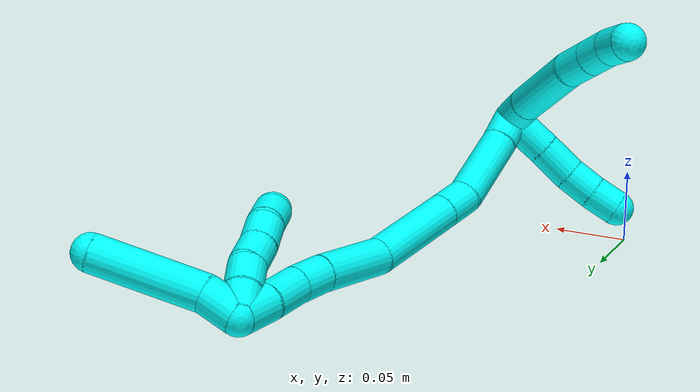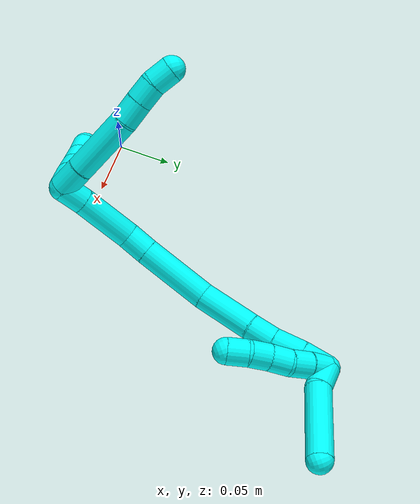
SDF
<sdf version="1.7">
 <world name="default">
  <model name="3">
   <static>0</static>
   <link name="3">
    <collision name="collision-cylinder-e_1_2_8">
     <pose>0.00566 -0.005322 0.010529 0.467992 0.447331 0.108335</pose>
     <geometry><cylinder><radius>0.0125</radius><length>0.02617</length></cylinder></geometry>
     <surface>
      <friction><ode><mu>1.16</mu><mu2>1.16</mu2><slip1>0</slip1><slip2>0</slip2></ode></friction>
      <contact><ode><kp>1e+06</kp><kd>1</kd><max_vel>0</max_vel><min_depth>0.001</min_depth></ode></contact>
     </surface>
    </collision>
    <visual name="visual-cylinder-e_1_2_8">
     <pose>0.00566 -0.005322 0.010529 0.467992 0.447331 0.108335</pose>
     <geometry><cylinder><radius>0.0125</radius><length>0.02617</length></cylinder></geometry>
     <material><ambient>0.003922 1 0.996078 1</ambient></material>
    </visual>
    <collision name="collision-cylinder-e_2_8_9">
     <pose>0.022712 -0.02375 0.046172 0.481006 0.382341 0.094857</pose>
     <geometry><cylinder><radius>0.0125</radius><length>0.061065</length></cylinder></geometry>
     <surface>
      <friction><ode><mu>1.16</mu><mu2>1.16</mu2><slip1>0</slip1><slip2>0</slip2></ode></friction>
      <contact><ode><kp>1e+06</kp><kd>1</kd><max_vel>0</max_vel><min_depth>0.001</min_depth></ode></contact>
     </surface>
    </collision>
    <visual name="visual-cylinder-e_2_8_9">
     <pose>0.022712 -0.02375 0.046172 0.481006 0.382341 0.094857</pose>
     <geometry><cylinder><radius>0.0125</radius><length>0.061065</length></cylinder></geometry>
     <material><ambient>0.003922 1 0.996078 1</ambient></material>
    </visual>
    <collision name="collision-cylinder-e_3_9_10">
     <pose>0.036901 -0.042846 0.080336 0.584625 0.252321 0.0763</pose>
     <geometry><cylinder><radius>0.0125</radius><length>0.022416</length></cylinder></geometry>
     <surface>
      <friction><ode><mu>1.16</mu><mu2>1.16</mu2><slip1>0</slip1><slip2>0</slip2></ode></friction>
      <contact><ode><kp>1e+06</kp><kd>1</kd><max_vel>0</max_vel><min_depth>0.001</min_depth></ode></contact>
     </surface>
    </collision>
    <visual name="visual-cylinder-e_3_9_10">
     <pose>0.036901 -0.042846 0.080336 0.584625 0.252321 0.0763</pose>
     <geometry><cylinder><radius>0.0125</radius><length>0.022416</length></cylinder></geometry>
     <material><ambient>0.003922 1 0.996078 1</ambient></material>
    </visual>
    <collision name="collision-cylinder-e_4_10_11">
     <pose>0.042244 -0.05395 0.097603 0.556746 0.257092 0.073849</pose>
     <geometry><cylinder><radius>0.0125</radius><length>0.020013</length></cylinder></geometry>
     <surface>
      <friction><ode><mu>1.16</mu><mu2>1.16</mu2><slip1>0</slip1><slip2>0</slip2></ode></friction>
      <contact><ode><kp>1e+06</kp><kd>1</kd><max_vel>0</max_vel><min_depth>0.001</min_depth></ode></contact>
     </surface>
    </collision>
    <visual name="visual-cylinder-e_4_10_11">
     <pose>0.042244 -0.05395 0.097603 0.556746 0.257092 0.073849</pose>
     <geometry><cylinder><radius>0.0125</radius><length>0.020013</length></cylinder></geometry>
     <material><ambient>0.003922 1 0.996078 1</ambient></material>
    </visual>
    <collision name="collision-cylinder-e_5_11_6">
     <pose>0.046546 -0.062257 0.115311 0.324511 0.173711 0.028505</pose>
     <geometry><cylinder><radius>0.0125</radius><length>0.020336</length></cylinder></geometry>
     <surface>
      <friction><ode><mu>1.16</mu><mu2>1.16</mu2><slip1>0</slip1><slip2>0</slip2></ode></friction>
      <contact><ode><kp>1e+06</kp><kd>1</kd><max_vel>0</max_vel><min_depth>0.001</min_depth></ode></contact>
     </surface>
    </collision>
    <visual name="visual-cylinder-e_5_11_6">
     <pose>0.046546 -0.062257 0.115311 0.324511 0.173711 0.028505</pose>
     <geometry><cylinder><radius>0.0125</radius><length>0.020336</length></cylinder></geometry>
     <material><ambient>0.003922 1 0.996078 1</ambient></material>
    </visual>
    <collision name="collision-cylinder-e_1_2_12">
     <pose>-0.014488 -0.004875 0.004607 0.813653 -1.13723 -0.537345</pose>
     <geometry><cylinder><radius>0.0125</radius><length>0.031929</length></cylinder></geometry>
     <surface>
      <friction><ode><mu>1.16</mu><mu2>1.16</mu2><slip1>0</slip1><slip2>0</slip2></ode></friction>
      <contact><ode><kp>1e+06</kp><kd>1</kd><max_vel>0</max_vel><min_depth>0.001</min_depth></ode></contact>
     </surface>
    </collision>
    <visual name="visual-cylinder-e_1_2_12">
     <pose>-0.014488 -0.004875 0.004607 0.813653 -1.13723 -0.537345</pose>
     <geometry><cylinder><radius>0.0125</radius><length>0.031929</length></cylinder></geometry>
     <material><ambient>0.003922 1 0.996078 1</ambient></material>
    </visual>
    <collision name="collision-cylinder-e_2_12_13">
     <pose>-0.040901 -0.013251 0.013006 0.745483 -1.16231 -0.502793</pose>
     <geometry><cylinder><radius>0.0125</radius><length>0.02599</length></cylinder></geometry>
     <surface>
      <friction><ode><mu>1.16</mu><mu2>1.16</mu2><slip1>0</slip1><slip2>0</slip2></ode></friction>
      <contact><ode><kp>1e+06</kp><kd>1</kd><max_vel>0</max_vel><min_depth>0.001</min_depth></ode></contact>
     </surface>
    </collision>
    <visual name="visual-cylinder-e_2_12_13">
     <pose>-0.040901 -0.013251 0.013006 0.745483 -1.16231 -0.502793</pose>
     <geometry><cylinder><radius>0.0125</radius><length>0.02599</length></cylinder></geometry>
     <material><ambient>0.003922 1 0.996078 1</ambient></material>
    </visual>
    <collision name="collision-cylinder-e_3_13_14">
     <pose>-0.061956 -0.020616 0.020961 0.748172 -1.01429 -0.429511</pose>
     <geometry><cylinder><radius>0.0125</radius><length>0.021503</length></cylinder></geometry>
     <surface>
      <friction><ode><mu>1.16</mu><mu2>1.16</mu2><slip1>0</slip1><slip2>0</slip2></ode></friction>
      <contact><ode><kp>1e+06</kp><kd>1</kd><max_vel>0</max_vel><min_depth>0.001</min_depth></ode></contact>
     </surface>
    </collision>
    <visual name="visual-cylinder-e_3_13_14">
     <pose>-0.061956 -0.020616 0.020961 0.748172 -1.01429 -0.429511</pose>
     <geometry><cylinder><radius>0.0125</radius><length>0.021503</length></cylinder></geometry>
     <material><ambient>0.003922 1 0.996078 1</ambient></material>
    </visual>
    <collision name="collision-cylinder-e_4_14_5">
     <pose>-0.079385 -0.028887 0.029311 0.811045 -0.938564 -0.428695</pose>
     <geometry><cylinder><radius>0.0125</radius><length>0.020578</length></cylinder></geometry>
     <surface>
      <friction><ode><mu>1.16</mu><mu2>1.16</mu2><slip1>0</slip1><slip2>0</slip2></ode></friction>
      <contact><ode><kp>1e+06</kp><kd>1</kd><max_vel>0</max_vel><min_depth>0.001</min_depth></ode></contact>
     </surface>
    </collision>
    <visual name="visual-cylinder-e_4_14_5">
     <pose>-0.079385 -0.028887 0.029311 0.811045 -0.938564 -0.428695</pose>
     <geometry><cylinder><radius>0.0125</radius><length>0.020578</length></cylinder></geometry>
     <material><ambient>0.003922 1 0.996078 1</ambient></material>
    </visual>
    <collision name="collision-cylinder-e_1_2_15">
     <pose>-0.003007 0.008986 0.00677 -0.925138 -0.261171 0.130792</pose>
     <geometry><cylinder><radius>0.0125</radius><length>0.023292</length></cylinder></geometry>
     <surface>
      <friction><ode><mu>1.16</mu><mu2>1.16</mu2><slip1>0</slip1><slip2>0</slip2></ode></friction>
      <contact><ode><kp>1e+06</kp><kd>1</kd><max_vel>0</max_vel><min_depth>0.001</min_depth></ode></contact>
     </surface>
    </collision>
    <visual name="visual-cylinder-e_1_2_15">
     <pose>-0.003007 0.008986 0.00677 -0.925138 -0.261171 0.130792</pose>
     <geometry><cylinder><radius>0.0125</radius><length>0.023292</length></cylinder></geometry>
     <material><ambient>0.003922 1 0.996078 1</ambient></material>
    </visual>
    <collision name="collision-cylinder-e_2_15_16">
     <pose>-0.011923 0.039791 0.027852 -0.990257 -0.222683 0.120601</pose>
     <geometry><cylinder><radius>0.0125</radius><length>0.053509</length></cylinder></geometry>
     <surface>
      <friction><ode><mu>1.16</mu><mu2>1.16</mu2><slip1>0</slip1><slip2>0</slip2></ode></friction>
      <contact><ode><kp>1e+06</kp><kd>1</kd><max_vel>0</max_vel><min_depth>0.001</min_depth></ode></contact>
     </surface>
    </collision>
    <visual name="visual-cylinder-e_2_15_16">
     <pose>-0.011923 0.039791 0.027852 -0.990257 -0.222683 0.120601</pose>
     <geometry><cylinder><radius>0.0125</radius><length>0.053509</length></cylinder></geometry>
     <material><ambient>0.003922 1 0.996078 1</ambient></material>
    </visual>
    <collision name="collision-cylinder-e_3_16_17">
     <pose>-0.016524 0.071673 0.048083 -1.0391 0.111563 -0.063854</pose>
     <geometry><cylinder><radius>0.0125</radius><length>0.023496</length></cylinder></geometry>
     <surface>
      <friction><ode><mu>1.16</mu><mu2>1.16</mu2><slip1>0</slip1><slip2>0</slip2></ode></friction>
      <contact><ode><kp>1e+06</kp><kd>1</kd><max_vel>0</max_vel><min_depth>0.001</min_depth></ode></contact>
     </surface>
    </collision>
    <visual name="visual-cylinder-e_3_16_17">
     <pose>-0.016524 0.071673 0.048083 -1.0391 0.111563 -0.063854</pose>
     <geometry><cylinder><radius>0.0125</radius><length>0.023496</length></cylinder></geometry>
     <material><ambient>0.003922 1 0.996078 1</ambient></material>
    </visual>
    <collision name="collision-cylinder-e_4_17_18">
     <pose>-0.010861 0.109782 0.071883 -1.00322 0.130186 -0.071464</pose>
     <geometry><cylinder><radius>0.0125</radius><length>0.06709</length></cylinder></geometry>
     <surface>
      <friction><ode><mu>1.16</mu><mu2>1.16</mu2><slip1>0</slip1><slip2>0</slip2></ode></friction>
      <contact><ode><kp>1e+06</kp><kd>1</kd><max_vel>0</max_vel><min_depth>0.001</min_depth></ode></contact>
     </surface>
    </collision>
    <visual name="visual-cylinder-e_4_17_18">
     <pose>-0.010861 0.109782 0.071883 -1.00322 0.130186 -0.071464</pose>
     <geometry><cylinder><radius>0.0125</radius><length>0.06709</length></cylinder></geometry>
     <material><ambient>0.003922 1 0.996078 1</ambient></material>
    </visual>
    <collision name="collision-cylinder-e_5_18_19">
     <pose>0.003789 0.157379 0.104872 -0.912893 0.39479 -0.195784</pose>
     <geometry><cylinder><radius>0.0125</radius><length>0.053535</length></cylinder></geometry>
     <surface>
      <friction><ode><mu>1.16</mu><mu2>1.16</mu2><slip1>0</slip1><slip2>0</slip2></ode></friction>
      <contact><ode><kp>1e+06</kp><kd>1</kd><max_vel>0</max_vel><min_depth>0.001</min_depth></ode></contact>
     </surface>
    </collision>
    <visual name="visual-cylinder-e_5_18_19">
     <pose>0.003789 0.157379 0.104872 -0.912893 0.39479 -0.195784</pose>
     <geometry><cylinder><radius>0.0125</radius><length>0.053535</length></cylinder></geometry>
     <material><ambient>0.003922 1 0.996078 1</ambient></material>
    </visual>
    <collision name="collision-cylinder-e_6_19_20">
     <pose>0.017704 0.185907 0.127266 -0.888965 0.303402 -0.145363</pose>
     <geometry><cylinder><radius>0.0125</radius><length>0.02423</length></cylinder></geometry>
     <surface>
      <friction><ode><mu>1.16</mu><mu2>1.16</mu2><slip1>0</slip1><slip2>0</slip2></ode></friction>
      <contact><ode><kp>1e+06</kp><kd>1</kd><max_vel>0</max_vel><min_depth>0.001</min_depth></ode></contact>
     </surface>
    </collision>
    <visual name="visual-cylinder-e_6_19_20">
     <pose>0.017704 0.185907 0.127266 -0.888965 0.303402 -0.145363</pose>
     <geometry><cylinder><radius>0.0125</radius><length>0.02423</length></cylinder></geometry>
     <material><ambient>0.003922 1 0.996078 1</ambient></material>
    </visual>
    <collision name="collision-cylinder-e_7_20_21">
     <pose>0.024828 0.204609 0.144722 -0.763083 0.244126 -0.098354</pose>
     <geometry><cylinder><radius>0.0125</radius><length>0.029003</length></cylinder></geometry>
     <surface>
      <friction><ode><mu>1.16</mu><mu2>1.16</mu2><slip1>0</slip1><slip2>0</slip2></ode></friction>
      <contact><ode><kp>1e+06</kp><kd>1</kd><max_vel>0</max_vel><min_depth>0.001</min_depth></ode></contact>
     </surface>
    </collision>
    <visual name="visual-cylinder-e_7_20_21">
     <pose>0.024828 0.204609 0.144722 -0.763083 0.244126 -0.098354</pose>
     <geometry><cylinder><radius>0.0125</radius><length>0.029003</length></cylinder></geometry>
     <material><ambient>0.003922 1 0.996078 1</ambient></material>
    </visual>
    <collision name="collision-cylinder-e_8_21_1">
     <pose>0.032011 0.223698 0.163004 -0.856891 0.288539 -0.132515</pose>
     <geometry><cylinder><radius>0.0125</radius><length>0.025846</length></cylinder></geometry>
     <surface>
      <friction><ode><mu>1.16</mu><mu2>1.16</mu2><slip1>0</slip1><slip2>0</slip2></ode></friction>
      <contact><ode><kp>1e+06</kp><kd>1</kd><max_vel>0</max_vel><min_depth>0.001</min_depth></ode></contact>
     </surface>
    </collision>
    <visual name="visual-cylinder-e_8_21_1">
     <pose>0.032011 0.223698 0.163004 -0.856891 0.288539 -0.132515</pose>
     <geometry><cylinder><radius>0.0125</radius><length>0.025846</length></cylinder></geometry>
     <material><ambient>0.003922 1 0.996078 1</ambient></material>
    </visual>
    <collision name="collision-cylinder-e_1_1_22">
     <pose>0.044359 0.238412 0.163421 -2.53404 0.746591 -1.79164</pose>
     <geometry><cylinder><radius>0.0125</radius><length>0.025536</length></cylinder></geometry>
     <surface>
      <friction><ode><mu>1.16</mu><mu2>1.16</mu2><slip1>0</slip1><slip2>0</slip2></ode></friction>
      <contact><ode><kp>1e+06</kp><kd>1</kd><max_vel>0</max_vel><min_depth>0.001</min_depth></ode></contact>
     </surface>
    </collision>
    <visual name="visual-cylinder-e_1_1_22">
     <pose>0.044359 0.238412 0.163421 -2.53404 0.746591 -1.79164</pose>
     <geometry><cylinder><radius>0.0125</radius><length>0.025536</length></cylinder></geometry>
     <material><ambient>0.003922 1 0.996078 1</ambient></material>
    </visual>
    <collision name="collision-cylinder-e_2_22_4">
     <pose>0.078414 0.267849 0.143012 -2.05649 0.750189 -1.15705</pose>
     <geometry><cylinder><radius>0.0125</radius><length>0.074464</length></cylinder></geometry>
     <surface>
      <friction><ode><mu>1.16</mu><mu2>1.16</mu2><slip1>0</slip1><slip2>0</slip2></ode></friction>
      <contact><ode><kp>1e+06</kp><kd>1</kd><max_vel>0</max_vel><min_depth>0.001</min_depth></ode></contact>
     </surface>
    </collision>
    <visual name="visual-cylinder-e_2_22_4">
     <pose>0.078414 0.267849 0.143012 -2.05649 0.750189 -1.15705</pose>
     <geometry><cylinder><radius>0.0125</radius><length>0.074464</length></cylinder></geometry>
     <material><ambient>0.003922 1 0.996078 1</ambient></material>
    </visual>
    <collision name="collision-cylinder-e_1_1_23">
     <pose>0.039586 0.228125 0.163342 2.57584 0.400377 1.21885</pose>
     <geometry><cylinder><radius>0.0125</radius><length>0.02</length></cylinder></geometry>
     <surface>
      <friction><ode><mu>1.16</mu><mu2>1.16</mu2><slip1>0</slip1><slip2>0</slip2></ode></friction>
      <contact><ode><kp>1e+06</kp><kd>1</kd><max_vel>0</max_vel><min_depth>0.001</min_depth></ode></contact>
     </surface>
    </collision>
    <visual name="visual-cylinder-e_1_1_23">
     <pose>0.039586 0.228125 0.163342 2.57584 0.400377 1.21885</pose>
     <geometry><cylinder><radius>0.0125</radius><length>0.02</length></cylinder></geometry>
     <material><ambient>0.003922 1 0.996078 1</ambient></material>
    </visual>
    <collision name="collision-cylinder-e_2_23_24">
     <pose>0.046786 0.21861 0.147314 2.63511 0.336577 1.16183</pose>
     <geometry><cylinder><radius>0.0125</radius><length>0.02</length></cylinder></geometry>
     <surface>
      <friction><ode><mu>1.16</mu><mu2>1.16</mu2><slip1>0</slip1><slip2>0</slip2></ode></friction>
      <contact><ode><kp>1e+06</kp><kd>1</kd><max_vel>0</max_vel><min_depth>0.001</min_depth></ode></contact>
     </surface>
    </collision>
    <visual name="visual-cylinder-e_2_23_24">
     <pose>0.046786 0.21861 0.147314 2.63511 0.336577 1.16183</pose>
     <geometry><cylinder><radius>0.0125</radius><length>0.02</length></cylinder></geometry>
     <material><ambient>0.003922 1 0.996078 1</ambient></material>
    </visual>
    <collision name="collision-cylinder-e_3_24_25">
     <pose>0.051177 0.208271 0.130958 2.52352 0.1091 0.338786</pose>
     <geometry><cylinder><radius>0.0125</radius><length>0.02</length></cylinder></geometry>
     <surface>
      <friction><ode><mu>1.16</mu><mu2>1.16</mu2><slip1>0</slip1><slip2>0</slip2></ode></friction>
      <contact><ode><kp>1e+06</kp><kd>1</kd><max_vel>0</max_vel><min_depth>0.001</min_depth></ode></contact>
     </surface>
    </collision>
    <visual name="visual-cylinder-e_3_24_25">
     <pose>0.051177 0.208271 0.130958 2.52352 0.1091 0.338786</pose>
     <geometry><cylinder><radius>0.0125</radius><length>0.02</length></cylinder></geometry>
     <material><ambient>0.003922 1 0.996078 1</ambient></material>
    </visual>
    <collision name="collision-cylinder-e_4_25_26">
     <pose>0.054537 0.197314 0.11462 2.57869 0.22904 0.757266</pose>
     <geometry><cylinder><radius>0.0125</radius><length>0.02</length></cylinder></geometry>
     <surface>
      <friction><ode><mu>1.16</mu><mu2>1.16</mu2><slip1>0</slip1><slip2>0</slip2></ode></friction>
      <contact><ode><kp>1e+06</kp><kd>1</kd><max_vel>0</max_vel><min_depth>0.001</min_depth></ode></contact>
     </surface>
    </collision>
    <visual name="visual-cylinder-e_4_25_26">
     <pose>0.054537 0.197314 0.11462 2.57869 0.22904 0.757266</pose>
     <geometry><cylinder><radius>0.0125</radius><length>0.02</length></cylinder></geometry>
     <material><ambient>0.003922 1 0.996078 1</ambient></material>
    </visual>
    <collision name="collision-cylinder-e_5_26_3">
     <pose>0.056648 0.187842 0.097345 2.69986 -0.015865 -0.07063</pose>
     <geometry><cylinder><radius>0.0125</radius><length>0.02</length></cylinder></geometry>
     <surface>
      <friction><ode><mu>1.16</mu><mu2>1.16</mu2><slip1>0</slip1><slip2>0</slip2></ode></friction>
      <contact><ode><kp>1e+06</kp><kd>1</kd><max_vel>0</max_vel><min_depth>0.001</min_depth></ode></contact>
     </surface>
    </collision>
    <visual name="visual-cylinder-e_5_26_3">
     <pose>0.056648 0.187842 0.097345 2.69986 -0.015865 -0.07063</pose>
     <geometry><cylinder><radius>0.0125</radius><length>0.02</length></cylinder></geometry>
     <material><ambient>0.003922 1 0.996078 1</ambient></material>
    </visual>
    <collision name="collision-sphere-3">
     <pose>0.05649 0.183567 0.088306 0 -0 0</pose>
     <geometry><sphere><radius>0.0125</radius></sphere></geometry>
     <surface>
      <friction><ode><mu>1.16</mu><mu2>1.16</mu2><slip1>0</slip1><slip2>0</slip2></ode></friction>
      <contact><ode><kp>1e+06</kp><kd>1</kd><max_vel>0</max_vel><min_depth>0.001</min_depth></ode></contact>
     </surface>
    </collision>
    <visual name="visual-sphere-3">
     <pose>0.05649 0.183567 0.088306 0 -0 0</pose>
     <geometry><sphere><radius>0.0125</radius></sphere></geometry>
     <material><ambient>0.003922 1 0.996078 1</ambient></material>
    </visual>
    <collision name="collision-sphere-26">
     <pose>0.056807 0.192116 0.106384 0 -0 0</pose>
     <geometry><sphere><radius>0.0125</radius></sphere></geometry>
     <surface>
      <friction><ode><mu>1.16</mu><mu2>1.16</mu2><slip1>0</slip1><slip2>0</slip2></ode></friction>
      <contact><ode><kp>1e+06</kp><kd>1</kd><max_vel>0</max_vel><min_depth>0.001</min_depth></ode></contact>
     </surface>
    </collision>
    <visual name="visual-sphere-26">
     <pose>0.056807 0.192116 0.106384 0 -0 0</pose>
     <geometry><sphere><radius>0.0125</radius></sphere></geometry>
     <material><ambient>0.003922 1 0.996078 1</ambient></material>
    </visual>
    <collision name="collision-sphere-25">
     <pose>0.052266 0.202511 0.122857 0 -0 0</pose>
     <geometry><sphere><radius>0.0125</radius></sphere></geometry>
     <surface>
      <friction><ode><mu>1.16</mu><mu2>1.16</mu2><slip1>0</slip1><slip2>0</slip2></ode></friction>
      <contact><ode><kp>1e+06</kp><kd>1</kd><max_vel>0</max_vel><min_depth>0.001</min_depth></ode></contact>
     </surface>
    </collision>
    <visual name="visual-sphere-25">
     <pose>0.052266 0.202511 0.122857 0 -0 0</pose>
     <geometry><sphere><radius>0.0125</radius></sphere></geometry>
     <material><ambient>0.003922 1 0.996078 1</ambient></material>
    </visual>
    <collision name="collision-sphere-24">
     <pose>0.050088 0.214031 0.13906 0 -0 0</pose>
     <geometry><sphere><radius>0.0125</radius></sphere></geometry>
     <surface>
      <friction><ode><mu>1.16</mu><mu2>1.16</mu2><slip1>0</slip1><slip2>0</slip2></ode></friction>
      <contact><ode><kp>1e+06</kp><kd>1</kd><max_vel>0</max_vel><min_depth>0.001</min_depth></ode></contact>
     </surface>
    </collision>
    <visual name="visual-sphere-24">
     <pose>0.050088 0.214031 0.13906 0 -0 0</pose>
     <geometry><sphere><radius>0.0125</radius></sphere></geometry>
     <material><ambient>0.003922 1 0.996078 1</ambient></material>
    </visual>
    <collision name="collision-sphere-23">
     <pose>0.043483 0.223189 0.155567 0 -0 0</pose>
     <geometry><sphere><radius>0.0125</radius></sphere></geometry>
     <surface>
      <friction><ode><mu>1.16</mu><mu2>1.16</mu2><slip1>0</slip1><slip2>0</slip2></ode></friction>
      <contact><ode><kp>1e+06</kp><kd>1</kd><max_vel>0</max_vel><min_depth>0.001</min_depth></ode></contact>
     </surface>
    </collision>
    <visual name="visual-sphere-23">
     <pose>0.043483 0.223189 0.155567 0 -0 0</pose>
     <geometry><sphere><radius>0.0125</radius></sphere></geometry>
     <material><ambient>0.003922 1 0.996078 1</ambient></material>
    </visual>
    <collision name="collision-sphere-4">
     <pose>0.103798 0.291937 0.130297 0 -0 0</pose>
     <geometry><sphere><radius>0.0125</radius></sphere></geometry>
     <surface>
      <friction><ode><mu>1.16</mu><mu2>1.16</mu2><slip1>0</slip1><slip2>0</slip2></ode></friction>
      <contact><ode><kp>1e+06</kp><kd>1</kd><max_vel>0</max_vel><min_depth>0.001</min_depth></ode></contact>
     </surface>
    </collision>
    <visual name="visual-sphere-4">
     <pose>0.103798 0.291937 0.130297 0 -0 0</pose>
     <geometry><sphere><radius>0.0125</radius></sphere></geometry>
     <material><ambient>0.003922 1 0.996078 1</ambient></material>
    </visual>
    <collision name="collision-sphere-22">
     <pose>0.05303 0.243762 0.155727 0 -0 0</pose>
     <geometry><sphere><radius>0.0125</radius></sphere></geometry>
     <surface>
      <friction><ode><mu>1.16</mu><mu2>1.16</mu2><slip1>0</slip1><slip2>0</slip2></ode></friction>
      <contact><ode><kp>1e+06</kp><kd>1</kd><max_vel>0</max_vel><min_depth>0.001</min_depth></ode></contact>
     </surface>
    </collision>
    <visual name="visual-sphere-22">
     <pose>0.05303 0.243762 0.155727 0 -0 0</pose>
     <geometry><sphere><radius>0.0125</radius></sphere></geometry>
     <material><ambient>0.003922 1 0.996078 1</ambient></material>
    </visual>
    <collision name="collision-sphere-1">
     <pose>0.035688 0.233062 0.171116 0 -0 0</pose>
     <geometry><sphere><radius>0.0125</radius></sphere></geometry>
     <surface>
      <friction><ode><mu>1.16</mu><mu2>1.16</mu2><slip1>0</slip1><slip2>0</slip2></ode></friction>
      <contact><ode><kp>1e+06</kp><kd>1</kd><max_vel>0</max_vel><min_depth>0.001</min_depth></ode></contact>
     </surface>
    </collision>
    <visual name="visual-sphere-1">
     <pose>0.035688 0.233062 0.171116 0 -0 0</pose>
     <geometry><sphere><radius>0.0125</radius></sphere></geometry>
     <material><ambient>0.003922 1 0.996078 1</ambient></material>
    </visual>
    <collision name="collision-sphere-21">
     <pose>0.028333 0.214334 0.154892 0 -0 0</pose>
     <geometry><sphere><radius>0.0125</radius></sphere></geometry>
     <surface>
      <friction><ode><mu>1.16</mu><mu2>1.16</mu2><slip1>0</slip1><slip2>0</slip2></ode></friction>
      <contact><ode><kp>1e+06</kp><kd>1</kd><max_vel>0</max_vel><min_depth>0.001</min_depth></ode></contact>
     </surface>
    </collision>
    <visual name="visual-sphere-21">
     <pose>0.028333 0.214334 0.154892 0 -0 0</pose>
     <geometry><sphere><radius>0.0125</radius></sphere></geometry>
     <material><ambient>0.003922 1 0.996078 1</ambient></material>
    </visual>
    <collision name="collision-sphere-6">
     <pose>0.048303 -0.06545 0.124803 0 -0 0</pose>
     <geometry><sphere><radius>0.0125</radius></sphere></geometry>
     <surface>
      <friction><ode><mu>1.16</mu><mu2>1.16</mu2><slip1>0</slip1><slip2>0</slip2></ode></friction>
      <contact><ode><kp>1e+06</kp><kd>1</kd><max_vel>0</max_vel><min_depth>0.001</min_depth></ode></contact>
     </surface>
    </collision>
    <visual name="visual-sphere-6">
     <pose>0.048303 -0.06545 0.124803 0 -0 0</pose>
     <geometry><sphere><radius>0.0125</radius></sphere></geometry>
     <material><ambient>0.003922 1 0.996078 1</ambient></material>
    </visual>
    <collision name="collision-sphere-11">
     <pose>0.044788 -0.059064 0.105819 0 -0 0</pose>
     <geometry><sphere><radius>0.0125</radius></sphere></geometry>
     <surface>
      <friction><ode><mu>1.16</mu><mu2>1.16</mu2><slip1>0</slip1><slip2>0</slip2></ode></friction>
      <contact><ode><kp>1e+06</kp><kd>1</kd><max_vel>0</max_vel><min_depth>0.001</min_depth></ode></contact>
     </surface>
    </collision>
    <visual name="visual-sphere-11">
     <pose>0.044788 -0.059064 0.105819 0 -0 0</pose>
     <geometry><sphere><radius>0.0125</radius></sphere></geometry>
     <material><ambient>0.003922 1 0.996078 1</ambient></material>
    </visual>
    <collision name="collision-sphere-10">
     <pose>0.039699 -0.048836 0.089386 0 -0 0</pose>
     <geometry><sphere><radius>0.0125</radius></sphere></geometry>
     <surface>
      <friction><ode><mu>1.16</mu><mu2>1.16</mu2><slip1>0</slip1><slip2>0</slip2></ode></friction>
      <contact><ode><kp>1e+06</kp><kd>1</kd><max_vel>0</max_vel><min_depth>0.001</min_depth></ode></contact>
     </surface>
    </collision>
    <visual name="visual-sphere-10">
     <pose>0.039699 -0.048836 0.089386 0 -0 0</pose>
     <geometry><sphere><radius>0.0125</radius></sphere></geometry>
     <material><ambient>0.003922 1 0.996078 1</ambient></material>
    </visual>
    <collision name="collision-sphere-9">
     <pose>0.034103 -0.036857 0.071285 0 -0 0</pose>
     <geometry><sphere><radius>0.0125</radius></sphere></geometry>
     <surface>
      <friction><ode><mu>1.16</mu><mu2>1.16</mu2><slip1>0</slip1><slip2>0</slip2></ode></friction>
      <contact><ode><kp>1e+06</kp><kd>1</kd><max_vel>0</max_vel><min_depth>0.001</min_depth></ode></contact>
     </surface>
    </collision>
    <visual name="visual-sphere-9">
     <pose>0.034103 -0.036857 0.071285 0 -0 0</pose>
     <geometry><sphere><radius>0.0125</radius></sphere></geometry>
     <material><ambient>0.003922 1 0.996078 1</ambient></material>
    </visual>
    <collision name="collision-sphere-2">
     <geometry><sphere><radius>0.0125</radius></sphere></geometry>
     <surface>
      <friction><ode><mu>1.16</mu><mu2>1.16</mu2><slip1>0</slip1><slip2>0</slip2></ode></friction>
      <contact><ode><kp>1e+06</kp><kd>1</kd><max_vel>0</max_vel><min_depth>0.001</min_depth></ode></contact>
     </surface>
    </collision>
    <visual name="visual-sphere-2">
     <geometry><sphere><radius>0.0125</radius></sphere></geometry>
     <material><ambient>0.003922 1 0.996078 1</ambient></material>
    </visual>
    <collision name="collision-sphere-19">
     <pose>0.014084 0.17693 0.11998 0 -0 0</pose>
     <geometry><sphere><radius>0.0125</radius></sphere></geometry>
     <surface>
      <friction><ode><mu>1.16</mu><mu2>1.16</mu2><slip1>0</slip1><slip2>0</slip2></ode></friction>
      <contact><ode><kp>1e+06</kp><kd>1</kd><max_vel>0</max_vel><min_depth>0.001</min_depth></ode></contact>
     </surface>
    </collision>
    <visual name="visual-sphere-19">
     <pose>0.014084 0.17693 0.11998 0 -0 0</pose>
     <geometry><sphere><radius>0.0125</radius></sphere></geometry>
     <material><ambient>0.003922 1 0.996078 1</ambient></material>
    </visual>
    <collision name="collision-sphere-8">
     <pose>0.01132 -0.010644 0.021058 0 -0 0</pose>
     <geometry><sphere><radius>0.0125</radius></sphere></geometry>
     <surface>
      <friction><ode><mu>1.16</mu><mu2>1.16</mu2><slip1>0</slip1><slip2>0</slip2></ode></friction>
      <contact><ode><kp>1e+06</kp><kd>1</kd><max_vel>0</max_vel><min_depth>0.001</min_depth></ode></contact>
     </surface>
    </collision>
    <visual name="visual-sphere-8">
     <pose>0.01132 -0.010644 0.021058 0 -0 0</pose>
     <geometry><sphere><radius>0.0125</radius></sphere></geometry>
     <material><ambient>0.003922 1 0.996078 1</ambient></material>
    </visual>
    <collision name="collision-sphere-12">
     <pose>-0.028975 -0.009749 0.009213 0 -0 0</pose>
     <geometry><sphere><radius>0.0125</radius></sphere></geometry>
     <surface>
      <friction><ode><mu>1.16</mu><mu2>1.16</mu2><slip1>0</slip1><slip2>0</slip2></ode></friction>
      <contact><ode><kp>1e+06</kp><kd>1</kd><max_vel>0</max_vel><min_depth>0.001</min_depth></ode></contact>
     </surface>
    </collision>
    <visual name="visual-sphere-12">
     <pose>-0.028975 -0.009749 0.009213 0 -0 0</pose>
     <geometry><sphere><radius>0.0125</radius></sphere></geometry>
     <material><ambient>0.003922 1 0.996078 1</ambient></material>
    </visual>
    <collision name="collision-sphere-13">
     <pose>-0.052827 -0.016752 0.016799 0 -0 0</pose>
     <geometry><sphere><radius>0.0125</radius></sphere></geometry>
     <surface>
      <friction><ode><mu>1.16</mu><mu2>1.16</mu2><slip1>0</slip1><slip2>0</slip2></ode></friction>
      <contact><ode><kp>1e+06</kp><kd>1</kd><max_vel>0</max_vel><min_depth>0.001</min_depth></ode></contact>
     </surface>
    </collision>
    <visual name="visual-sphere-13">
     <pose>-0.052827 -0.016752 0.016799 0 -0 0</pose>
     <geometry><sphere><radius>0.0125</radius></sphere></geometry>
     <material><ambient>0.003922 1 0.996078 1</ambient></material>
    </visual>
    <collision name="collision-sphere-14">
     <pose>-0.071085 -0.024479 0.025124 0 -0 0</pose>
     <geometry><sphere><radius>0.0125</radius></sphere></geometry>
     <surface>
      <friction><ode><mu>1.16</mu><mu2>1.16</mu2><slip1>0</slip1><slip2>0</slip2></ode></friction>
      <contact><ode><kp>1e+06</kp><kd>1</kd><max_vel>0</max_vel><min_depth>0.001</min_depth></ode></contact>
     </surface>
    </collision>
    <visual name="visual-sphere-14">
     <pose>-0.071085 -0.024479 0.025124 0 -0 0</pose>
     <geometry><sphere><radius>0.0125</radius></sphere></geometry>
     <material><ambient>0.003922 1 0.996078 1</ambient></material>
    </visual>
    <collision name="collision-sphere-5">
     <pose>-0.087685 -0.033295 0.033499 0 -0 0</pose>
     <geometry><sphere><radius>0.0125</radius></sphere></geometry>
     <surface>
      <friction><ode><mu>1.16</mu><mu2>1.16</mu2><slip1>0</slip1><slip2>0</slip2></ode></friction>
      <contact><ode><kp>1e+06</kp><kd>1</kd><max_vel>0</max_vel><min_depth>0.001</min_depth></ode></contact>
     </surface>
    </collision>
    <visual name="visual-sphere-5">
     <pose>-0.087685 -0.033295 0.033499 0 -0 0</pose>
     <geometry><sphere><radius>0.0125</radius></sphere></geometry>
     <material><ambient>0.003922 1 0.996078 1</ambient></material>
    </visual>
    <collision name="collision-sphere-15">
     <pose>-0.006014 0.017973 0.01354 0 -0 0</pose>
     <geometry><sphere><radius>0.0125</radius></sphere></geometry>
     <surface>
      <friction><ode><mu>1.16</mu><mu2>1.16</mu2><slip1>0</slip1><slip2>0</slip2></ode></friction>
      <contact><ode><kp>1e+06</kp><kd>1</kd><max_vel>0</max_vel><min_depth>0.001</min_depth></ode></contact>
     </surface>
    </collision>
    <visual name="visual-sphere-15">
     <pose>-0.006014 0.017973 0.01354 0 -0 0</pose>
     <geometry><sphere><radius>0.0125</radius></sphere></geometry>
     <material><ambient>0.003922 1 0.996078 1</ambient></material>
    </visual>
    <collision name="collision-sphere-16">
     <pose>-0.017832 0.06161 0.042164 0 -0 0</pose>
     <geometry><sphere><radius>0.0125</radius></sphere></geometry>
     <surface>
      <friction><ode><mu>1.16</mu><mu2>1.16</mu2><slip1>0</slip1><slip2>0</slip2></ode></friction>
      <contact><ode><kp>1e+06</kp><kd>1</kd><max_vel>0</max_vel><min_depth>0.001</min_depth></ode></contact>
     </surface>
    </collision>
    <visual name="visual-sphere-16">
     <pose>-0.017832 0.06161 0.042164 0 -0 0</pose>
     <geometry><sphere><radius>0.0125</radius></sphere></geometry>
     <material><ambient>0.003922 1 0.996078 1</ambient></material>
    </visual>
    <collision name="collision-sphere-17">
     <pose>-0.015216 0.081736 0.054002 0 -0 0</pose>
     <geometry><sphere><radius>0.0125</radius></sphere></geometry>
     <surface>
      <friction><ode><mu>1.16</mu><mu2>1.16</mu2><slip1>0</slip1><slip2>0</slip2></ode></friction>
      <contact><ode><kp>1e+06</kp><kd>1</kd><max_vel>0</max_vel><min_depth>0.001</min_depth></ode></contact>
     </surface>
    </collision>
    <visual name="visual-sphere-17">
     <pose>-0.015216 0.081736 0.054002 0 -0 0</pose>
     <geometry><sphere><radius>0.0125</radius></sphere></geometry>
     <material><ambient>0.003922 1 0.996078 1</ambient></material>
    </visual>
    <collision name="collision-sphere-18">
     <pose>-0.006506 0.137828 0.089764 0 -0 0</pose>
     <geometry><sphere><radius>0.0125</radius></sphere></geometry>
     <surface>
      <friction><ode><mu>1.16</mu><mu2>1.16</mu2><slip1>0</slip1><slip2>0</slip2></ode></friction>
      <contact><ode><kp>1e+06</kp><kd>1</kd><max_vel>0</max_vel><min_depth>0.001</min_depth></ode></contact>
     </surface>
    </collision>
    <visual name="visual-sphere-18">
     <pose>-0.006506 0.137828 0.089764 0 -0 0</pose>
     <geometry><sphere><radius>0.0125</radius></sphere></geometry>
     <material><ambient>0.003922 1 0.996078 1</ambient></material>
    </visual>
    <collision name="collision-sphere-20">
     <pose>0.021323 0.194883 0.134553 0 -0 0</pose>
     <geometry><sphere><radius>0.0125</radius></sphere></geometry>
     <surface>
      <friction><ode><mu>1.16</mu><mu2>1.16</mu2><slip1>0</slip1><slip2>0</slip2></ode></friction>
      <contact><ode><kp>1e+06</kp><kd>1</kd><max_vel>0</max_vel><min_depth>0.001</min_depth></ode></contact>
     </surface>
    </collision>
    <visual name="visual-sphere-20">
     <pose>0.021323 0.194883 0.134553 0 -0 0</pose>
     <geometry><sphere><radius>0.0125</radius></sphere></geometry>
     <material><ambient>0.003922 1 0.996078 1</ambient></material>
    </visual>
    <inertial>
     <pose>0.015951 0.101915 0.084448 0 -0 0</pose>
     <mass>0.75</mass>
     <inertia><ixx>9.3e-05</ixx><ixy>0</ixy><ixz>0</ixz><iyy>7.2e-05</iyy><iyz>0</iyz><izz>-8.3e-05</izz></inertia>
    </inertial>
   </link>
   <pose>0.093617 -0.014771 0.072786 -1.41603 -1.10159 0.564499</pose>
  </model>
 </world>
</sdf>
